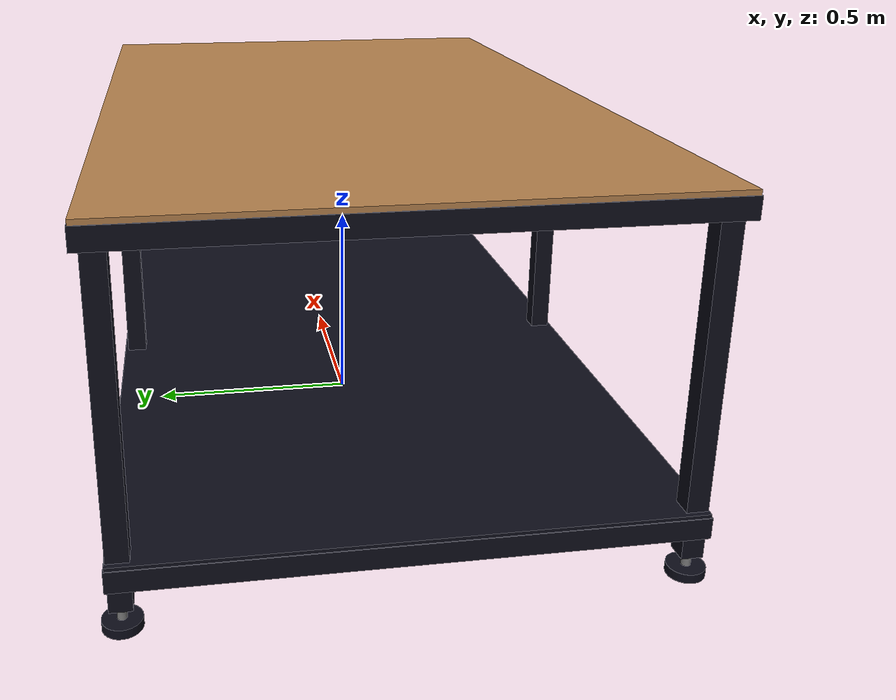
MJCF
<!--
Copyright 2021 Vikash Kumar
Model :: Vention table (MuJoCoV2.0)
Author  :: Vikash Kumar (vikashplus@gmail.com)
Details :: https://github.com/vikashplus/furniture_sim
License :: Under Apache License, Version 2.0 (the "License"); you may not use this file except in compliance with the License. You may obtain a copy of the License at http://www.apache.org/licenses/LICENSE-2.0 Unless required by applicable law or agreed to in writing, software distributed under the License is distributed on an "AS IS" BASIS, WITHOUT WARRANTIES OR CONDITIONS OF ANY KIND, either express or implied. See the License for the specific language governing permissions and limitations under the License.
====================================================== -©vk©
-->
<mujoco model="Vention table">

    <compiler
        angle="radian"
        inertiafromgeom="auto"
        inertiagrouprange="4 4"
        meshdir=""
        texturedir=""
    />

    <asset>
        <texture name="steel_texture" type="2d" file="ventionTable/wood.png"/>
        <material name="steel" texture="steel_texture" shininess=".8"/>
        <material name="vention_black" rgba="0.05 0.05 0.1 1" reflectance="1" shininess=".5"  />
        <material name="vention_blue" rgba="0.05 0.05 0.1 1" reflectance="10" shininess=".1"  />
    </asset>

    <default>
        <default class="vention">
            <geom conaffinity="0" contype="0" group="1"/>
            <default class="vention_collision">
                <geom conaffinity="1" condim="3" contype="0" group="4" margin="0.001" rgba=".4 .5 .6 1"/>
            </default>
        </default>
    </default>

    <worldbody>
        <body name="vention table" childclass="vention">
            <geom type="cylinder" size="0.040 0.010" pos="-0.955 -0.565 0.010" material="vention_black"/>
            <geom type="cylinder" size="0.040 0.010" pos=" 0.955 -0.565 0.010" material="vention_black"/>
            <geom type="cylinder" size="0.040 0.010" pos="-0.955  0.565 0.010" material="vention_black"/>
            <geom type="cylinder" size="0.040 0.010" pos=" 0.955  0.565 0.010" material="vention_black"/>

            <!-- pad stems -->
            <geom type="cylinder" size="0.010 0.020" pos="-0.955 -0.565 0.030" rgba=".5 .5 .5 1"/>
            <geom type="cylinder" size="0.010 0.020" pos=" 0.955 -0.565 0.030" rgba=".5 .5 .5 1"/>
            <geom type="cylinder" size="0.010 0.020" pos="-0.955  0.565 0.030" rgba=".5 .5 .5 1"/>
            <geom type="cylinder" size="0.010 0.020" pos=" 0.955  0.565 0.030" rgba=".5 .5 .5 1"/>

            <!-- primary corner legs -->
            <geom type="box" size="0.023 0.023 0.387" pos="-0.955 -0.565 0.435" material="vention_blue"/>
            <geom type="box" size="0.023 0.023 0.387" pos=" 0.955 -0.565 0.435" material="vention_blue"/>
            <geom type="box" size="0.023 0.023 0.387" pos="-0.955  0.565 0.435" material="vention_blue"/>
            <geom type="box" size="0.023 0.023 0.387" pos=" 0.955  0.565 0.435" material="vention_blue"/>

            <!-- centre legs (Y‑axis only) -->
            <geom type="box" size="0.023 0.023 0.337" pos="0  0.559 0.440" material="vention_blue"/>
            <geom type="box" size="0.023 0.023 0.337" pos="0 -0.559 0.440" material="vention_blue"/>

            <!-- ───────── work‑surface (top) ───────── -->
            <!-- black laminate top -->
            <geom class="vention_collision" type="box" size="1.000 0.600 0.023" pos="0 0 0.801" material="vention_black"/>
            <geom type="box" name="tabletop_visual"  size="1.000 0.600 0.023" pos="0 0 0.801" material="steel"/>
            <!-- blue frame just beneath -->
            <geom type="box" size="1.002 0.602 0.023" pos="0 0 0.790" material="vention_blue"/>

            <!-- ───────── lower shelf ───────── -->
            <geom type="box" size="0.990 0.590 0.005" pos="0 0 0.150" material="vention_black"/>
            <geom type="box" size="0.992 0.592 0.023" pos="0 0 0.124" material="vention_blue"/>
        </body>
    </worldbody>
</mujoco>
